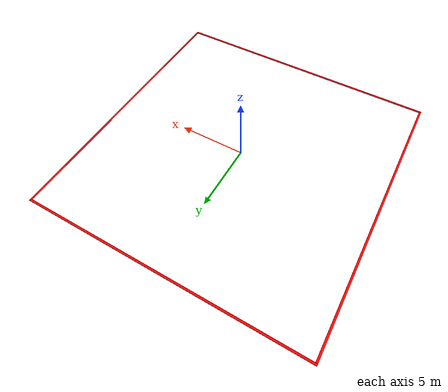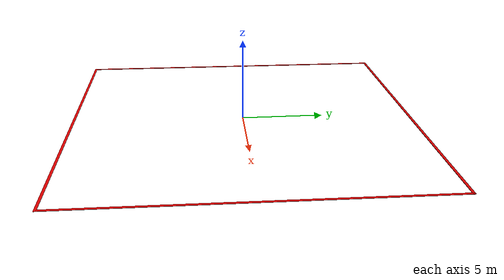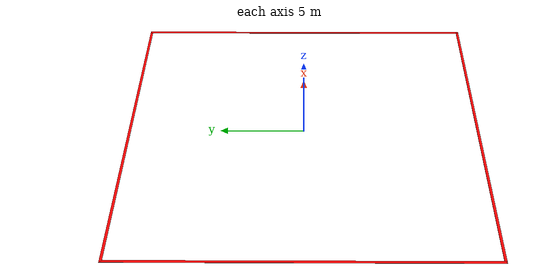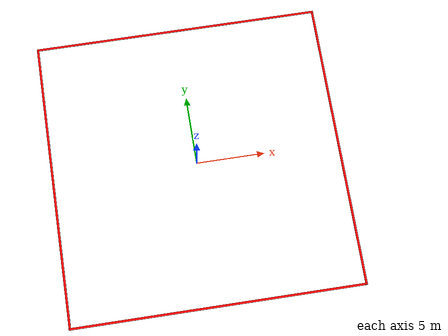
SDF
<?xml version="1.0"?>
<sdf version="1.9">
  <model name="InHouse2026Border">
    <static>true</static>
    <link name="link">
      <visual name="border_y_min">
        <pose>0 -10.5 0.01 0 0 0</pose>
        <geometry>
          <box>
            <size>21.15 0.15 0.02</size>
          </box>
        </geometry>
        <material>
          <ambient>0.6 0 0 1</ambient>
          <diffuse>1 0 0 1</diffuse>
          <specular>0.01 0.01 0.01 1</specular>
          <emissive>0.25 0 0 1</emissive>
        </material>
      </visual>
      <visual name="border_y_max">
        <pose>0 10.5 0.01 0 0 0</pose>
        <geometry>
          <box>
            <size>21.15 0.15 0.02</size>
          </box>
        </geometry>
        <material>
          <ambient>0.6 0 0 1</ambient>
          <diffuse>1 0 0 1</diffuse>
          <specular>0.01 0.01 0.01 1</specular>
          <emissive>0.25 0 0 1</emissive>
        </material>
      </visual>
      <visual name="border_x_min">
        <pose>-10.5 0 0.01 0 0 0</pose>
        <geometry>
          <box>
            <size>0.15 21.15 0.02</size>
          </box>
        </geometry>
        <material>
          <ambient>0.6 0 0 1</ambient>
          <diffuse>1 0 0 1</diffuse>
          <specular>0.01 0.01 0.01 1</specular>
          <emissive>0.25 0 0 1</emissive>
        </material>
      </visual>
      <visual name="border_x_max">
        <pose>10.5 0 0.01 0 0 0</pose>
        <geometry>
          <box>
            <size>0.15 21.15 0.02</size>
          </box>
        </geometry>
        <material>
          <ambient>0.6 0 0 1</ambient>
          <diffuse>1 0 0 1</diffuse>
          <specular>0.01 0.01 0.01 1</specular>
          <emissive>0.25 0 0 1</emissive>
        </material>
      </visual>
    </link>
  </model>
</sdf>
